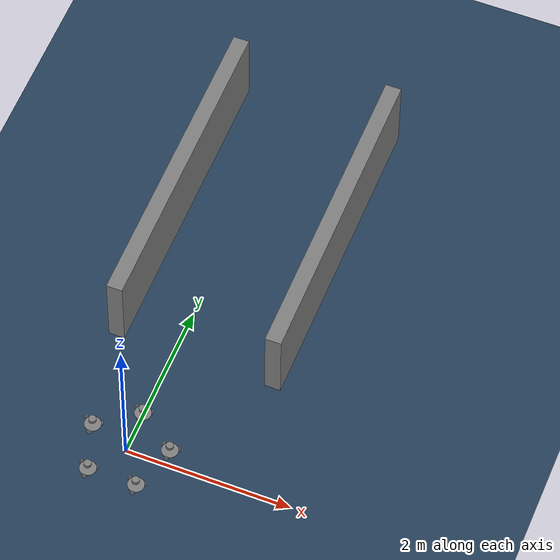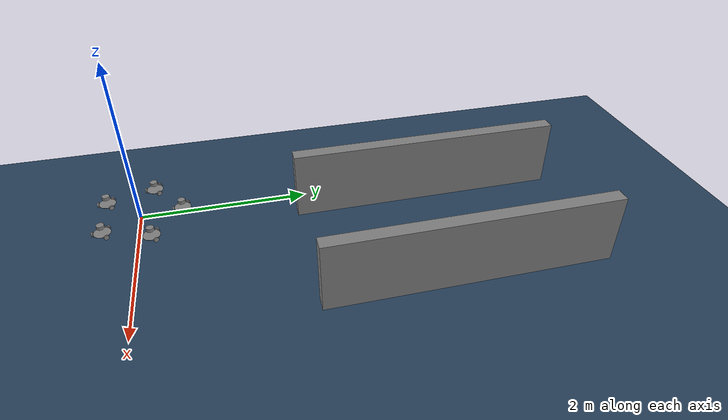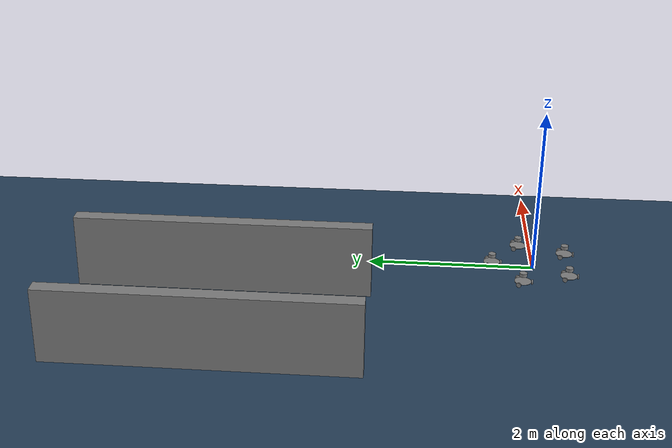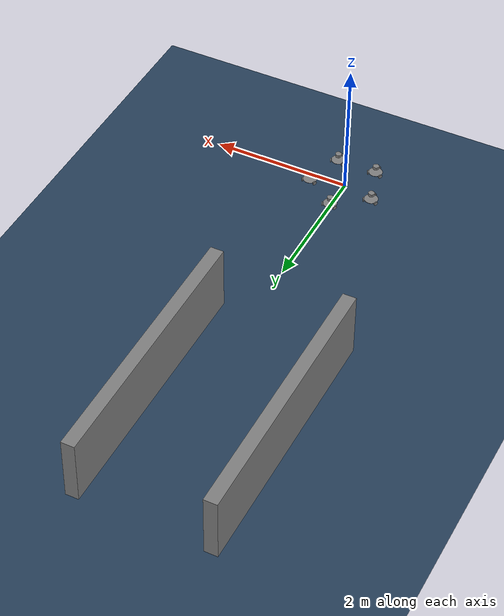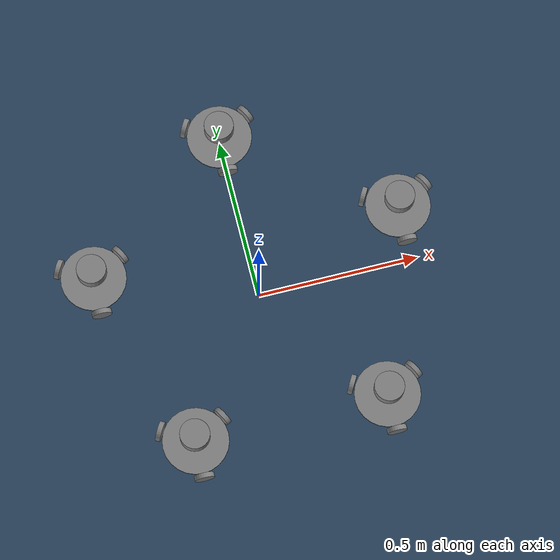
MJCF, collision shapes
<mujoco model="triton_lidar">
  <!-- compiler eulerseq="XYZ"/-->
  <!-- wheel, camara, cover, lidar, light, light_holding, board, down body-->
  <compiler angle="degree" coordinate="local" eulerseq="XYZ"/>
  <default>
    <default class="unused"/>
    <joint armature="1" damping="1" limited="false"/>
  </default>
  <asset>
    <texture name="grid" type="2d" builtin="checker" rgb1="0.10000000000000001 0.20000000000000001 0.29999999999999999" rgb2="0.20000000000000001 0.29999999999999999 0.40000000000000002" width="512" height="512"/>
    <material name="grid" class="unused" texture="grid" texrepeat="1 1" texuniform="true" reflectance="0.20000000000000001"/>

    <mesh name="triton" class="unused" file="my_triton_body_standard2.stl" scale="1 1 1"/>
    <mesh name="left_wheel" class="unused" file="new_wheel.stl" />
    <mesh name="camara" class="unused" file="camara.stl" />
    <mesh name="cover" class="unused" file="my_triton_cover.stl" />
    <mesh name="lidar" class="unused" file="my_triton_lidar.stl" />
    <mesh name="light" class="unused" file="my_triton_light.stl" />
    <mesh name="light_holding" class="unused" file="my_triton_light_holding.stl" />
    <mesh name="board" class="unused" file="my_triton_board.stl" />
    <mesh name="downboard" class="unused" file="my_triton_downboard.stl" />

    <material name="black" class="unused" emission="0" specular="0.0099999997764825821" rgba="0 0 0 1"/>
    <material name="silver" class="unused" emission="0" specular="0.0099999997764825821" rgba="0.75 0.75 0.75 1"/>
    <material name="blue" class="unused" emission="0" specular="0.0099999997764825821" rgba="0.51 0.85 0.82 1"/>
    <material name="orange" class="unused" emission="0" specular="0.0099999997764825821" rgba="0.85 0.30 0.1 1"/>
    <material name="grey" class="unused" emission="0" specular="0.0099999997764825821" rgba="0.3 0.3 0.3 1"/>

  </asset>
  <worldbody>
    <light name="light_1" directional="true" diffuse=".8 .8 .8" specular=".1 .1 .1" pos="0 0 1" dir="0 0 -1"/>
    <geom name="floor" class="unused" type="plane" condim="3" size="0 0 0.050000000000000003" material="grid" pos="0 0 -1"/>

    <!-- 1st Triton-->
    <body name="triton" pos="0 0.5 0.035000000000000003" euler="0 -0 -150">
      <inertial pos="0 0 0" mass="1" fullinertia="0.14583299999999999 0.14583299999999999 0.125 0 0 0"/>
      <geom name="triton_body" class="unused" type="mesh" contype="0" conaffinity="0" group="1" material="silver" pos="0 0 -0.02" euler="0 -0 -30" mesh="triton"/>
      <geom name="camara" class="unused" type="mesh" contype="0" conaffinity="0" group="1" material="grey" pos="0 0 0" euler="0 -0 -30" mesh="camara"/>
      <geom name="cover" class="unused" type="mesh" contype="0" conaffinity="0" group="1" material="blue" pos="0 0 0" euler="0 -0 -30" mesh="cover"/>
      <geom name="light" class="unused" type="mesh" contype="0" conaffinity="0" group="1" material="blue" pos="0 0 0" euler="0 -0 -30" mesh="light"/>
      <geom name="light_holding" class="unused" type="mesh" contype="0" conaffinity="0" group= "1" material="orange" pos="0 0 0" euler="0 -0 -30" mesh="light_holding"/>
      <geom name="board" class="unused" type="mesh" contype="0" conaffinity="0" group="1" material="orange" pos="0 0 0" euler="0 -0 -30" mesh="board"/>
      <geom name="downboard" class="unused" type="mesh" contype="0" conaffinity="0" group="1" material="orange" pos="0 0 0" euler="0 -0 -30" mesh="downboard"/>
      <geom name="lidar" class="unused" type="mesh" contype="0" conaffinity="0" group="1" material="grey" pos="0 0 0" euler="0 -0 -30" mesh="lidar"/>
      <geom name="collision" class="unused" type="cylinder" size="0.10 0.002" group="2" friction="1 0.0050000000000000001 0.0001" pos="0 0 0.035" euler="0 -0 0"/>
      <joint name="trition_body" armature="1" damping="1" type="free"/>

      <body name="lidar" pos="0 0 -0.035000000000000003" euler="0 -0 0">
        <inertial pos="0 0 0.161" mass="0.125" fullinertia="0.001 0.001 0.001 0 0 0"/>
        <geom name="lidar_collision" class="unused" type="cylinder" group="2" size="0.045 0.0208" friction="1 0.0050000000000000001 0.0001" pos="0 0 0.161" euler="0 -0 0"/>
        <site name="hls_lfcd_lds" class="unused" pos="0 0 0.17100000000000001" euler="0 -0 0"/>
      </body>

      <body name="right_wheel_link" pos="-0.11 0 0.03" euler="0.0045263665815347721 89.95437383555452 0.0041825919044565273">
        <inertial pos="0 0 0" mass="1" fullinertia="0.14583299999999999 0.14583299999999999 0.125 0 0 0"/>
        <geom name="right_wheel_collision" class="unused" type="cylinder"  group = "2" size="0.029999999999999999 0.0074999999999999997" friction="1 0.0050000000000000001 0.0001" />
        <!--This is one of the wheels-->
        <geom name="right_visual" class="unused" type="mesh" contype="0" conaffinity="0" group="1" size="0.029999999999999999 0.0074999999999999997" material="grey" pos="0 0 0" euler="90 0 0" mesh="left_wheel"/>
        <joint name="right_wheel" class="unused" type="hinge" pos="-1.0408340855860843e-17 0 -1.3877787807814457e-17" axis="0 0 1"/>
      </body>

      <body name="back_wheel_link" pos="0.055 0.095 0.03" euler="119.99913469661091 89.954373835546534 0.00017188733800956195">
        <inertial pos="0 0 0" mass="1" fullinertia="0.14583299999999999 0.14583299999999999 0.125 0 0 0"/>
        <geom name="back_wheel_collision" class="unused" type="cylinder"  group = "2" size="0.029999999999999999 0.0074999999999999997" friction="1 0.0050000000000000001 0.0001" />
        <geom name="back_visual" class="unused" type="mesh" contype="0" conaffinity="0" group="1" size="0.029999999999999999 0.0074999999999999997" material="grey" pos="0 0 0" euler="90 0 0" mesh="left_wheel" />
        <joint name="back_wheel" class="unused" type="hinge" pos="0 -1.7347234759768071e-17 1.3877787807814457e-17" axis="0 0 1"/>
      </body>

      <body name="left_wheel_link" pos="0.055 -0.095 0.03" euler="-119.9928321608599 89.954373835546534 0.0052712117170394205">
        <inertial pos="0 0 0" mass="1" fullinertia="0.14583299999999999 0.14583299999999999 0.125 0 0 0"/>
        <geom name="left_wheel_collision" class="unused" type="cylinder"  group = "2" size="0.029999999999999999 0.0074999999999999997" friction="1 0.0050000000000000001 0.0001" />
        <geom name="left_visual" class="unused" type="mesh" contype="0" conaffinity="0" group="1" size="0.029999999999999999 0.0074999999999999997" material="grey" pos="0 0 0" euler="90 0 0" mesh="left_wheel"/>
        <joint name="left_wheel" class="unused"  type="hinge" pos="6.9388939039072284e-18 -3.1225022567582528e-17 -1.3877787807814457e-17" axis="0 0 1"/>
      </body>
    </body>

    <!-- 2nd Triton-->
    <body name="triton2" pos="-0.47552825 0.15450849 0.035000000000000003" euler="0 -0 -150">
      <inertial pos="0 0 0" mass="1" fullinertia="0.14583299999999999 0.14583299999999999 0.125 0 0 0"/>
      <geom name="triton_body2" class="unused" type="mesh" contype="0" conaffinity="0" group="1" material="silver" pos="0 0 -0.02" euler="0 -0 -30" mesh="triton"/>
      <geom name="camara2" class="unused" type="mesh" contype="0" conaffinity="0" group="1" material="grey" pos="0 0 0" euler="0 -0 -30" mesh="camara"/>
      <geom name="cover2" class="unused" type="mesh" contype="0" conaffinity="0" group="1" material="blue" pos="0 0 0" euler="0 -0 -30" mesh="cover"/>
      <geom name="light2" class="unused" type="mesh" contype="0" conaffinity="0" group="1" material="blue" pos="0 0 0" euler="0 -0 -30" mesh="light"/>
      <geom name="light_holding2" class="unused" type="mesh" contype="0" conaffinity="0" group="1" material="orange" pos="0 0 0" euler="0 -0 -30" mesh="light_holding"/>
      <geom name="board2" class="unused" type="mesh" contype="0" conaffinity="0" group="1" material="orange" pos="0 0 0" euler="0 -0 -30" mesh="board"/>
      <geom name="downboard2" class="unused" type="mesh" contype="0" conaffinity="0" group="1" material="orange" pos="0 0 0" euler="0 -0 -30" mesh="downboard"/>
      <geom name="lidar2" class="unused" type="mesh" contype="0" conaffinity="0" group="1" material="grey" pos="0 0 0" euler="0 -0 -30" mesh="lidar"/>
      <geom name="collision2" class="unused" type="cylinder" size="0.10 0.002" group="2" friction="1 0.0050000000000000001 0.0001" pos="0 0 0.035" euler="0 -0 0"/>
      <joint name="trition_body2" armature="1" damping="1" type="free"/>

      <body name="lidar2" pos="0 0 -0.035000000000000003" euler="0 -0 0">
        <inertial pos="0 0 0.161" mass="0.125" fullinertia="0.001 0.001 0.001 0 0 0"/>
        <geom name="lidar_collision2" class="unused" type="cylinder" group="2" size="0.045 0.0208" friction="1 0.0050000000000000001 0.0001" pos="0 0 0.161" euler="0 -0 0"/>
        <site name="hls_lfcd_lds2" class="unused" pos="0 0 0.17100000000000001" euler="0 -0 0"/>
      </body>

      <body name="right_wheel_link2" pos="-0.11 0 0.03" euler="0.0045263665815347721 89.95437383555452 0.0041825919044565273">
        <inertial pos="0 0 0" mass="1" fullinertia="0.14583299999999999 0.14583299999999999 0.125 0 0 0"/>
        <geom name="right_wheel_collision2" class="unused" type="cylinder"  group = "2" size="0.029999999999999999 0.0074999999999999997" friction="1 0.0050000000000000001 0.0001" />
        <!--This is one of the wheels-->
        <geom name="right_visual2" class="unused" type="mesh" contype="0" conaffinity="0" group="1" size="0.029999999999999999 0.0074999999999999997" material="grey" pos="0 0 0" euler="90 0 0" mesh="left_wheel"/>
        <joint name="right_wheel2" class="unused" type="hinge" pos="-1.0408340855860843e-17 0 -1.3877787807814457e-17" axis="0 0 1"/>
      </body>

      <body name="back_wheel_link2" pos="0.055 0.095 0.03" euler="119.99913469661091 89.954373835546534 0.00017188733800956195">
        <inertial pos="0 0 0" mass="1" fullinertia="0.14583299999999999 0.14583299999999999 0.125 0 0 0"/>
        <geom name="back_wheel_collision2" class="unused" type="cylinder"  group = "2" size="0.029999999999999999 0.0074999999999999997" friction="1 0.0050000000000000001 0.0001" />
        <geom name="back_visual2" class="unused" type="mesh" contype="0" conaffinity="0" group="1" size="0.029999999999999999 0.0074999999999999997" material="grey" pos="0 0 0" euler="90 0 0" mesh="left_wheel" />
        <joint name="back_wheel2" class="unused" type="hinge" pos="0 -1.7347234759768071e-17 1.3877787807814457e-17" axis="0 0 1"/>
      </body>

      <body name="left_wheel_link2" pos="0.055 -0.095 0.03" euler="-119.9928321608599 89.954373835546534 0.0052712117170394205">
        <inertial pos="0 0 0" mass="1" fullinertia="0.14583299999999999 0.14583299999999999 0.125 0 0 0"/>
        <geom name="left_wheel_collision2" class="unused" type="cylinder"  group = "2" size="0.029999999999999999 0.0074999999999999997" friction="1 0.0050000000000000001 0.0001" />
        <geom name="left_visual2" class="unused" type="mesh" contype="0" conaffinity="0" group="1" size="0.029999999999999999 0.0074999999999999997" material="grey" pos="0 0 0" euler="90 0 0" mesh="left_wheel"/>
        <joint name="left_wheel2" class="unused"  type="hinge" pos="6.9388939039072284e-18 -3.1225022567582528e-17 -1.3877787807814457e-17" axis="0 0 1"/>
      </body>
    </body>

    <!-- 3rd Triton-->
    <body name="triton3" pos="0.47552825 0.15450849 0.035000000000000003" euler="0 -0 -150">
      <inertial pos="0 0 0" mass="1" fullinertia="0.14583299999999999 0.14583299999999999 0.125 0 0 0"/>
      <geom name="triton_body3" class="unused" type="mesh" contype="0" conaffinity="0" group="1" material="silver" pos="0 0 -0.02" euler="0 -0 -30" mesh="triton"/>
      <geom name="camara3" class="unused" type="mesh" contype="0" conaffinity="0" group="1" material="grey" pos="0 0 0" euler="0 -0 -30" mesh="camara"/>
      <geom name="cover3" class="unused" type="mesh" contype="0" conaffinity="0" group="1" material="blue" pos="0 0 0" euler="0 -0 -30" mesh="cover"/>
      <geom name="light3" class="unused" type="mesh" contype="0" conaffinity="0" group="1" material="blue" pos="0 0 0" euler="0 -0 -30" mesh="light"/>
      <geom name="light_holding3" class="unused" type="mesh" contype="0" conaffinity="0" group="1" material="orange" pos="0 0 0" euler="0 -0 -30" mesh="light_holding"/>
      <geom name="board3" class="unused" type="mesh" contype="0" conaffinity="0" group="1" material="orange" pos="0 0 0" euler="0 -0 -30" mesh="board"/>
      <geom name="downboard3" class="unused" type="mesh" contype="0" conaffinity="0" group="1" material="orange" pos="0 0 0" euler="0 -0 -30" mesh="downboard"/>
      <geom name="lidar3" class="unused" type="mesh" contype="0" conaffinity="0" group="1" material="grey" pos="0 0 0" euler="0 -0 -30" mesh="lidar"/>
      <geom name="collision3" class="unused" type="cylinder" size="0.10 0.002" group="2" friction="1 0.0050000000000000001 0.0001" pos="0 0 0.035" euler="0 -0 0"/>
      <joint name="trition_body3" armature="1" damping="1" type="free"/>

      <body name="lidar3" pos="0 0 -0.035000000000000003" euler="0 -0 0">
        <inertial pos="0 0 0.161" mass="0.125" fullinertia="0.001 0.001 0.001 0 0 0"/>
        <geom name="lidar_collision3" class="unused" type="cylinder" group="2" size="0.045 0.0208" friction="1 0.0050000000000000001 0.0001" pos="0 0 0.161" euler="0 -0 0"/>
        <site name="hls_lfcd_lds3" class="unused" pos="0 0 0.17100000000000001" euler="0 -0 0"/>
      </body>

      <body name="right_wheel_link3" pos="-0.11 0 0.03" euler="0.0045263665815347721 89.95437383555452 0.0041825919044565273">
        <inertial pos="0 0 0" mass="1" fullinertia="0.14583299999999999 0.14583299999999999 0.125 0 0 0"/>
        <geom name="right_wheel_collision3" class="unused" type="cylinder"  group = "2" size="0.029999999999999999 0.0074999999999999997" friction="1 0.0050000000000000001 0.0001" />
        <!--This is one of the wheels-->
        <geom name="right_visual3" class="unused" type="mesh" contype="0" conaffinity="0" group="1" size="0.029999999999999999 0.0074999999999999997" material="grey" pos="0 0 0" euler="90 0 0" mesh="left_wheel"/>
        <joint name="right_wheel3" class="unused" type="hinge" pos="-1.0408340855860843e-17 0 -1.3877787807814457e-17" axis="0 0 1"/>
      </body>

      <body name="back_wheel_link3" pos="0.055 0.095 0.03" euler="119.99913469661091 89.954373835546534 0.00017188733800956195">
        <inertial pos="0 0 0" mass="1" fullinertia="0.14583299999999999 0.14583299999999999 0.125 0 0 0"/>
        <geom name="back_wheel_collision3" class="unused" type="cylinder"  group = "2" size="0.029999999999999999 0.0074999999999999997" friction="1 0.0050000000000000001 0.0001" />
        <geom name="back_visual3" class="unused" type="mesh" contype="0" conaffinity="0" group="1" size="0.029999999999999999 0.0074999999999999997" material="grey" pos="0 0 0" euler="90 0 0" mesh="left_wheel" />
        <joint name="back_wheel3" class="unused" type="hinge" pos="0 -1.7347234759768071e-17 1.3877787807814457e-17" axis="0 0 1"/>
      </body>

      <body name="left_wheel_link3" pos="0.055 -0.095 0.03" euler="-119.9928321608599 89.954373835546534 0.0052712117170394205">
        <inertial pos="0 0 0" mass="1" fullinertia="0.14583299999999999 0.14583299999999999 0.125 0 0 0"/>
        <geom name="left_wheel_collision3" class="unused" type="cylinder"  group = "2" size="0.029999999999999999 0.0074999999999999997" friction="1 0.0050000000000000001 0.0001" />
        <geom name="left_visual3" class="unused" type="mesh" contype="0" conaffinity="0" group="1" size="0.029999999999999999 0.0074999999999999997" material="grey" pos="0 0 0" euler="90 0 0" mesh="left_wheel"/>
        <joint name="left_wheel3" class="unused"  type="hinge" pos="6.9388939039072284e-18 -3.1225022567582528e-17 -1.3877787807814457e-17" axis="0 0 1"/>
      </body>
    </body>

    <!-- 4th Triton-->
    <body name="triton4" pos="-0.29389262 -0.40450849 0.035000000000000003" euler="0 -0 -150">
      <inertial pos="0 0 0" mass="1" fullinertia="0.14583299999999999 0.14583299999999999 0.125 0 0 0"/>
      <geom name="triton_body4" class="unused" type="mesh" contype="0" conaffinity="0" group="1" material="silver" pos="0 0 -0.02" euler="0 -0 -30" mesh="triton"/>
      <geom name="camara4" class="unused" type="mesh" contype="0" conaffinity="0" group="1" material="grey" pos="0 0 0" euler="0 -0 -30" mesh="camara"/>
      <geom name="cover4" class="unused" type="mesh" contype="0" conaffinity="0" group="1" material="blue" pos="0 0 0" euler="0 -0 -30" mesh="cover"/>
      <geom name="light4" class="unused" type="mesh" contype="0" conaffinity="0" group="1" material="blue" pos="0 0 0" euler="0 -0 -30" mesh="light"/>
      <geom name="light_holding4" class="unused" type="mesh" contype="0" conaffinity="0" group="1" material="orange" pos="0 0 0" euler="0 -0 -30" mesh="light_holding"/>
      <geom name="board4" class="unused" type="mesh" contype="0" conaffinity="0" group="1" material="orange" pos="0 0 0" euler="0 -0 -30" mesh="board"/>
      <geom name="downboard4" class="unused" type="mesh" contype="0" conaffinity="0" group="1" material="orange" pos="0 0 0" euler="0 -0 -30" mesh="downboard"/>
      <geom name="lidar4" class="unused" type="mesh" contype="0" conaffinity="0" group="1" material="grey" pos="0 0 0" euler="0 -0 -30" mesh="lidar"/>
      <geom name="collision4" class="unused" type="cylinder" size="0.10 0.002" group="2" friction="1 0.0050000000000000001 0.0001" pos="0 0 0.035" euler="0 -0 0"/>
      <joint name="trition_body4" armature="1" damping="1" type="free"/>

      <body name="lidar4" pos="0 0 -0.035000000000000003" euler="0 -0 0">
        <inertial pos="0 0 0.161" mass="0.125" fullinertia="0.001 0.001 0.001 0 0 0"/>
        <geom name="lidar_collision4" class="unused" type="cylinder" group="2" size="0.045 0.0208" friction="1 0.0050000000000000001 0.0001" pos="0 0 0.161" euler="0 -0 0"/>
        <site name="hls_lfcd_lds4" class="unused" pos="0 0 0.17100000000000001" euler="0 -0 0"/>
      </body>

      <body name="right_wheel_link4" pos="-0.11 0 0.03" euler="0.0045263665815347721 89.95437383555452 0.0041825919044565273">
        <inertial pos="0 0 0" mass="1" fullinertia="0.14583299999999999 0.14583299999999999 0.125 0 0 0"/>
        <geom name="right_wheel_collision4" class="unused" type="cylinder"  group = "2" size="0.029999999999999999 0.0074999999999999997" friction="1 0.0050000000000000001 0.0001" />
        <!--This is one of the wheels-->
        <geom name="right_visual4" class="unused" type="mesh" contype="0" conaffinity="0" group="1" size="0.029999999999999999 0.0074999999999999997" material="grey" pos="0 0 0" euler="90 0 0" mesh="left_wheel"/>
        <joint name="right_wheel4" class="unused" type="hinge" pos="-1.0408340855860843e-17 0 -1.3877787807814457e-17" axis="0 0 1"/>
      </body>

      <body name="back_wheel_link4" pos="0.055 0.095 0.03" euler="119.99913469661091 89.954373835546534 0.00017188733800956195">
        <inertial pos="0 0 0" mass="1" fullinertia="0.14583299999999999 0.14583299999999999 0.125 0 0 0"/>
        <geom name="back_wheel_collision4" class="unused" type="cylinder"  group = "2" size="0.029999999999999999 0.0074999999999999997" friction="1 0.0050000000000000001 0.0001" />
        <geom name="back_visual4" class="unused" type="mesh" contype="0" conaffinity="0" group="1" size="0.029999999999999999 0.0074999999999999997" material="grey" pos="0 0 0" euler="90 0 0" mesh="left_wheel" />
        <joint name="back_wheel4" class="unused" type="hinge" pos="0 -1.7347234759768071e-17 1.3877787807814457e-17" axis="0 0 1"/>
      </body>

      <body name="left_wheel_link4" pos="0.055 -0.095 0.03" euler="-119.9928321608599 89.954373835546534 0.0052712117170394205">
        <inertial pos="0 0 0" mass="1" fullinertia="0.14583299999999999 0.14583299999999999 0.125 0 0 0"/>
        <geom name="left_wheel_collision4" class="unused" type="cylinder"  group = "2" size="0.029999999999999999 0.0074999999999999997" friction="1 0.0050000000000000001 0.0001" />
        <geom name="left_visual4" class="unused" type="mesh" contype="0" conaffinity="0" group="1" size="0.029999999999999999 0.0074999999999999997" material="grey" pos="0 0 0" euler="90 0 0" mesh="left_wheel"/>
        <joint name="left_wheel4" class="unused"  type="hinge" pos="6.9388939039072284e-18 -3.1225022567582528e-17 -1.3877787807814457e-17" axis="0 0 1"/>
      </body>
    </body>

    <!-- 5th Triton-->
    <body name="triton5" pos="0.29389262 -0.40450849 0.035000000000000003" euler="0 -0 -150">
      <inertial pos="0 0 0" mass="1" fullinertia="0.14583299999999999 0.14583299999999999 0.125 0 0 0"/>
      <geom name="triton_body5" class="unused" type="mesh" contype="0" conaffinity="0" group="1" material="silver" pos="0 0 -0.02" euler="0 -0 -30" mesh="triton"/>
      <geom name="camara5" class="unused" type="mesh" contype="0" conaffinity="0" group="1" material="grey" pos="0 0 0" euler="0 -0 -30" mesh="camara"/>
      <geom name="cover5" class="unused" type="mesh" contype="0" conaffinity="0" group="1" material="blue" pos="0 0 0" euler="0 -0 -30" mesh="cover"/>
      <geom name="light5" class="unused" type="mesh" contype="0" conaffinity="0" group="1" material="blue" pos="0 0 0" euler="0 -0 -30" mesh="light"/>
      <geom name="light_holding5" class="unused" type="mesh" contype="0" conaffinity="0" group="1" material="orange" pos="0 0 0" euler="0 -0 -30" mesh="light_holding"/>
      <geom name="board5" class="unused" type="mesh" contype="0" conaffinity="0" group="1" material="orange" pos="0 0 0" euler="0 -0 -30" mesh="board"/>
      <geom name="downboard5" class="unused" type="mesh" contype="0" conaffinity="0" group="1" material="orange" pos="0 0 0" euler="0 -0 -30" mesh="downboard"/>
      <geom name="lidar5" class="unused" type="mesh" contype="0" conaffinity="0" group="1" material="grey" pos="0 0 0" euler="0 -0 -30" mesh="lidar"/>
      <geom name="collision5" class="unused" type="cylinder" size="0.10 0.002" group="2" friction="1 0.0050000000000000001 0.0001" pos="0 0 0.035" euler="0 -0 0"/>
      <joint name="trition_body5" armature="1" damping="1" type="free"/>

      <body name="lidar5" pos="0 0 -0.035000000000000003" euler="0 -0 0">
        <inertial pos="0 0 0.161" mass="0.125" fullinertia="0.001 0.001 0.001 0 0 0"/>
        <geom name="lidar_collision5" class="unused" type="cylinder" group="2" size="0.045 0.0208" friction="1 0.0050000000000000001 0.0001" pos="0 0 0.161" euler="0 -0 0"/>
        <site name="hls_lfcd_lds5" class="unused" pos="0 0 0.17100000000000001" euler="0 -0 0"/>
      </body>

      <body name="right_wheel_link5" pos="-0.11 0 0.03" euler="0.0045263665815347721 89.95437383555452 0.0041825919044565273">
        <inertial pos="0 0 0" mass="1" fullinertia="0.14583299999999999 0.14583299999999999 0.125 0 0 0"/>
        <geom name="right_wheel_collision5" class="unused" type="cylinder"  group = "2" size="0.029999999999999999 0.0074999999999999997" friction="1 0.0050000000000000001 0.0001" />
        <!--This is one of the wheels-->
        <geom name="right_visual5" class="unused" type="mesh" contype="0" conaffinity="0" group="1" size="0.029999999999999999 0.0074999999999999997" material="grey" pos="0 0 0" euler="90 0 0" mesh="left_wheel"/>
        <joint name="right_wheel5" class="unused" type="hinge" pos="-1.0408340855860843e-17 0 -1.3877787807814457e-17" axis="0 0 1"/>
      </body>

      <body name="back_wheel_link5" pos="0.055 0.095 0.03" euler="119.99913469661091 89.954373835546534 0.00017188733800956195">
        <inertial pos="0 0 0" mass="1" fullinertia="0.14583299999999999 0.14583299999999999 0.125 0 0 0"/>
        <geom name="back_wheel_collision5" class="unused" type="cylinder"  group = "2" size="0.029999999999999999 0.0074999999999999997" friction="1 0.0050000000000000001 0.0001" />
        <geom name="back_visual5" class="unused" type="mesh" contype="0" conaffinity="0" group="1" size="0.029999999999999999 0.0074999999999999997" material="grey" pos="0 0 0" euler="90 0 0" mesh="left_wheel" />
        <joint name="back_wheel5" class="unused" type="hinge" pos="0 -1.7347234759768071e-17 1.3877787807814457e-17" axis="0 0 1"/>
      </body>

      <body name="left_wheel_link5" pos="0.055 -0.095 0.03" euler="-119.9928321608599 89.954373835546534 0.0052712117170394205">
        <inertial pos="0 0 0" mass="1" fullinertia="0.14583299999999999 0.14583299999999999 0.125 0 0 0"/>
        <geom name="left_wheel_collision5" class="unused" type="cylinder"  group = "2" size="0.029999999999999999 0.0074999999999999997" friction="1 0.0050000000000000001 0.0001" />
        <geom name="left_visual5" class="unused" type="mesh" contype="0" conaffinity="0" group="1" size="0.029999999999999999 0.0074999999999999997" material="grey" pos="0 0 0" euler="90 0 0" mesh="left_wheel"/>
        <joint name="left_wheel5" class="unused"  type="hinge" pos="6.9388939039072284e-18 -3.1225022567582528e-17 -1.3877787807814457e-17" axis="0 0 1"/>
      </body>
    </body>

    <body name="wall1" pos="1 4 -0.5">
      <geom name="wall_geom" type="box" size="2 0.1 0.5" rgba="0.5 0.5 0.5 1" friction="1 0.5 0.5" euler = "0 0 90" contype="1" conaffinity="1" />
    </body>

    <body name="wall2" pos="-1 4 -0.5">
      <geom name="wall_geom2" type="box" size="2 0.1 0.5" rgba="0.5 0.5 0.5 1" friction="1 0.5 0.5" euler = "0 0 90" contype="1" conaffinity="1" />
    </body>

  </worldbody>

  <tendon>
    <fixed name = "go_foward">
      <joint joint = "right_wheel" coef = "1"/>
      <joint joint = "left_wheel" coef = "-1"/>
    </fixed>

    <fixed name = "turn">
      <joint joint = "right_wheel" coef = "1"/>
      <joint joint = "left_wheel" coef = "1"/>
      <joint joint = "back_wheel" coef = "1"/>
    </fixed>
  </tendon>

  <actuator>
    <motor name="right_wheel" gear="3" joint="right_wheel"/>
    <motor name="back_wheel" gear="3" joint="back_wheel"/>
    <motor name="left_wheel" gear="3" joint="left_wheel"/>
    <motor name="go_forward" tendon="go_foward" gear="5"/>
    <motor name="turn" tendon="turn" gear="3"/>
  </actuator>

</mujoco>
